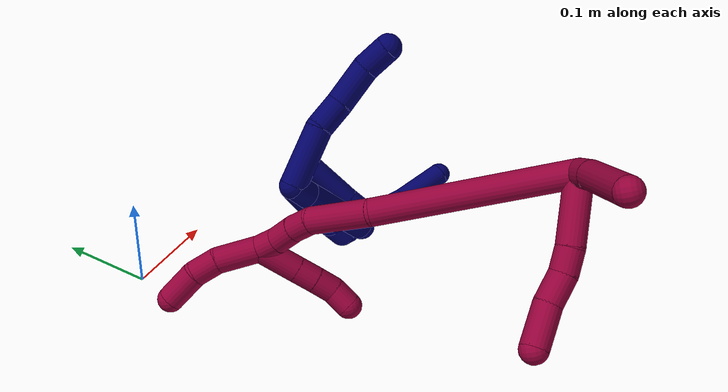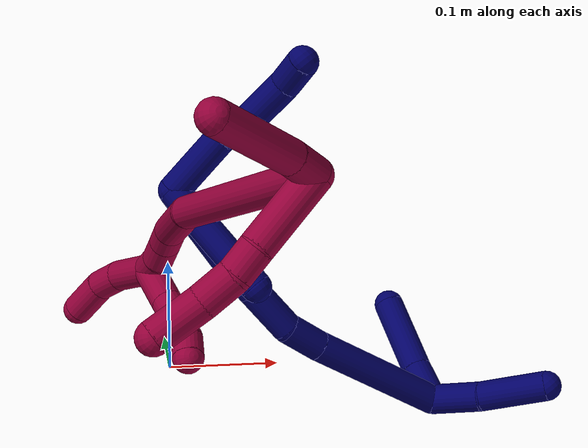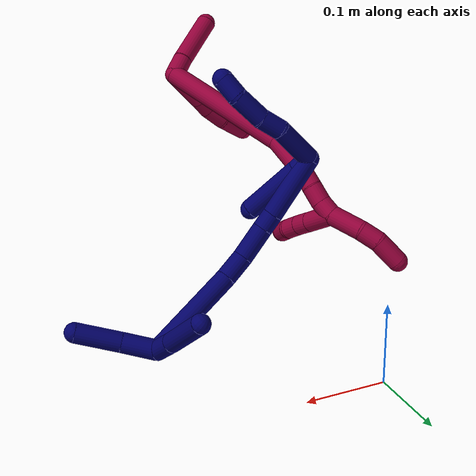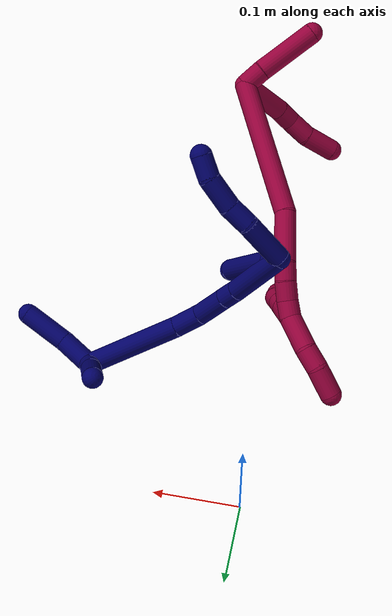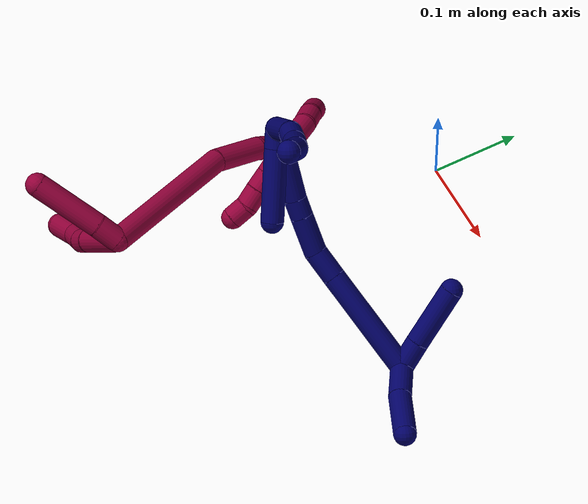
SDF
<sdf version="1.7">
 <world name="default">
  <model name="7">
   <static>0</static>
   <link name="7">
    <collision name="collision-cylinder-e_1_2_8">
     <pose>0.014123 0.023784 -0.004364 -1.75226 0.528618 -0.62813</pose>
     <geometry><cylinder><radius>0.0125</radius><length>0.056008</length></cylinder></geometry>
     <surface>
      <friction><ode><mu>1.16</mu><mu2>1.16</mu2><slip1>0</slip1><slip2>0</slip2></ode></friction>
      <contact><ode><kp>1e+06</kp><kd>1</kd><max_vel>0</max_vel><min_depth>0.001</min_depth></ode></contact>
     </surface>
    </collision>
    <visual name="visual-cylinder-e_1_2_8">
     <pose>0.014123 0.023784 -0.004364 -1.75226 0.528618 -0.62813</pose>
     <geometry><cylinder><radius>0.0125</radius><length>0.056008</length></cylinder></geometry>
     <material><ambient>0.003922 0 0.403922 1</ambient></material>
    </visual>
    <collision name="collision-cylinder-e_2_8_9">
     <pose>0.03375 0.060539 -0.007211 -1.4544 0.398864 -0.355923</pose>
     <geometry><cylinder><radius>0.0125</radius><length>0.028341</length></cylinder></geometry>
     <surface>
      <friction><ode><mu>1.16</mu><mu2>1.16</mu2><slip1>0</slip1><slip2>0</slip2></ode></friction>
      <contact><ode><kp>1e+06</kp><kd>1</kd><max_vel>0</max_vel><min_depth>0.001</min_depth></ode></contact>
     </surface>
    </collision>
    <visual name="visual-cylinder-e_2_8_9">
     <pose>0.03375 0.060539 -0.007211 -1.4544 0.398864 -0.355923</pose>
     <geometry><cylinder><radius>0.0125</radius><length>0.028341</length></cylinder></geometry>
     <material><ambient>0.003922 0 0.403922 1</ambient></material>
    </visual>
    <collision name="collision-cylinder-e_3_9_10">
     <pose>0.045319 0.09189 -0.007222 -1.65367 0.317666 -0.344629</pose>
     <geometry><cylinder><radius>0.0125</radius><length>0.038833</length></cylinder></geometry>
     <surface>
      <friction><ode><mu>1.16</mu><mu2>1.16</mu2><slip1>0</slip1><slip2>0</slip2></ode></friction>
      <contact><ode><kp>1e+06</kp><kd>1</kd><max_vel>0</max_vel><min_depth>0.001</min_depth></ode></contact>
     </surface>
    </collision>
    <visual name="visual-cylinder-e_3_9_10">
     <pose>0.045319 0.09189 -0.007222 -1.65367 0.317666 -0.344629</pose>
     <geometry><cylinder><radius>0.0125</radius><length>0.038833</length></cylinder></geometry>
     <material><ambient>0.003922 0 0.403922 1</ambient></material>
    </visual>
    <collision name="collision-cylinder-e_4_10_6">
     <pose>0.051223 0.123556 -0.010569 -1.70693 -0.011927 0.013673</pose>
     <geometry><cylinder><radius>0.0125</radius><length>0.026818</length></cylinder></geometry>
     <surface>
      <friction><ode><mu>1.16</mu><mu2>1.16</mu2><slip1>0</slip1><slip2>0</slip2></ode></friction>
      <contact><ode><kp>1e+06</kp><kd>1</kd><max_vel>0</max_vel><min_depth>0.001</min_depth></ode></contact>
     </surface>
    </collision>
    <visual name="visual-cylinder-e_4_10_6">
     <pose>0.051223 0.123556 -0.010569 -1.70693 -0.011927 0.013673</pose>
     <geometry><cylinder><radius>0.0125</radius><length>0.026818</length></cylinder></geometry>
     <material><ambient>0.003922 0 0.403922 1</ambient></material>
    </visual>
    <collision name="collision-cylinder-e_1_2_11">
     <pose>-0.00095 0.001131 0.010342 -0.108957 -0.091059 0.004969</pose>
     <geometry><cylinder><radius>0.0125</radius><length>0.020895</length></cylinder></geometry>
     <surface>
      <friction><ode><mu>1.16</mu><mu2>1.16</mu2><slip1>0</slip1><slip2>0</slip2></ode></friction>
      <contact><ode><kp>1e+06</kp><kd>1</kd><max_vel>0</max_vel><min_depth>0.001</min_depth></ode></contact>
     </surface>
    </collision>
    <visual name="visual-cylinder-e_1_2_11">
     <pose>-0.00095 0.001131 0.010342 -0.108957 -0.091059 0.004969</pose>
     <geometry><cylinder><radius>0.0125</radius><length>0.020895</length></cylinder></geometry>
     <material><ambient>0.003922 0 0.403922 1</ambient></material>
    </visual>
    <collision name="collision-cylinder-e_2_11_5">
     <pose>-0.005194 0.00711 0.059801 -0.123294 -0.083373 0.005149</pose>
     <geometry><cylinder><radius>0.0125</radius><length>0.079105</length></cylinder></geometry>
     <surface>
      <friction><ode><mu>1.16</mu><mu2>1.16</mu2><slip1>0</slip1><slip2>0</slip2></ode></friction>
      <contact><ode><kp>1e+06</kp><kd>1</kd><max_vel>0</max_vel><min_depth>0.001</min_depth></ode></contact>
     </surface>
    </collision>
    <visual name="visual-cylinder-e_2_11_5">
     <pose>-0.005194 0.00711 0.059801 -0.123294 -0.083373 0.005149</pose>
     <geometry><cylinder><radius>0.0125</radius><length>0.079105</length></cylinder></geometry>
     <material><ambient>0.003922 0 0.403922 1</ambient></material>
    </visual>
    <collision name="collision-cylinder-e_1_2_12">
     <pose>0.005564 -0.006264 0.039701 0.156493 0.13756 0.010803</pose>
     <geometry><cylinder><radius>0.0125</radius><length>0.08115</length></cylinder></geometry>
     <surface>
      <friction><ode><mu>1.16</mu><mu2>1.16</mu2><slip1>0</slip1><slip2>0</slip2></ode></friction>
      <contact><ode><kp>1e+06</kp><kd>1</kd><max_vel>0</max_vel><min_depth>0.001</min_depth></ode></contact>
     </surface>
    </collision>
    <visual name="visual-cylinder-e_1_2_12">
     <pose>0.005564 -0.006264 0.039701 0.156493 0.13756 0.010803</pose>
     <geometry><cylinder><radius>0.0125</radius><length>0.08115</length></cylinder></geometry>
     <material><ambient>0.003922 0 0.403922 1</ambient></material>
    </visual>
    <collision name="collision-cylinder-e_2_12_13">
     <pose>0.013753 -0.013812 0.089577 0.125538 0.250607 0.015834</pose>
     <geometry><cylinder><radius>0.0125</radius><length>0.021175</length></cylinder></geometry>
     <surface>
      <friction><ode><mu>1.16</mu><mu2>1.16</mu2><slip1>0</slip1><slip2>0</slip2></ode></friction>
      <contact><ode><kp>1e+06</kp><kd>1</kd><max_vel>0</max_vel><min_depth>0.001</min_depth></ode></contact>
     </surface>
    </collision>
    <visual name="visual-cylinder-e_2_12_13">
     <pose>0.013753 -0.013812 0.089577 0.125538 0.250607 0.015834</pose>
     <geometry><cylinder><radius>0.0125</radius><length>0.021175</length></cylinder></geometry>
     <material><ambient>0.003922 0 0.403922 1</ambient></material>
    </visual>
    <collision name="collision-cylinder-e_3_13_14">
     <pose>0.021858 -0.01791 0.120296 0.13613 0.258325 0.017708</pose>
     <geometry><cylinder><radius>0.0125</radius><length>0.042891</length></cylinder></geometry>
     <surface>
      <friction><ode><mu>1.16</mu><mu2>1.16</mu2><slip1>0</slip1><slip2>0</slip2></ode></friction>
      <contact><ode><kp>1e+06</kp><kd>1</kd><max_vel>0</max_vel><min_depth>0.001</min_depth></ode></contact>
     </surface>
    </collision>
    <visual name="visual-cylinder-e_3_13_14">
     <pose>0.021858 -0.01791 0.120296 0.13613 0.258325 0.017708</pose>
     <geometry><cylinder><radius>0.0125</radius><length>0.042891</length></cylinder></geometry>
     <material><ambient>0.003922 0 0.403922 1</ambient></material>
    </visual>
    <collision name="collision-cylinder-e_4_14_15">
     <pose>0.036436 -0.021527 0.154793 0.057451 0.577095 0.017058</pose>
     <geometry><cylinder><radius>0.0125</radius><length>0.033359</length></cylinder></geometry>
     <surface>
      <friction><ode><mu>1.16</mu><mu2>1.16</mu2><slip1>0</slip1><slip2>0</slip2></ode></friction>
      <contact><ode><kp>1e+06</kp><kd>1</kd><max_vel>0</max_vel><min_depth>0.001</min_depth></ode></contact>
     </surface>
    </collision>
    <visual name="visual-cylinder-e_4_14_15">
     <pose>0.036436 -0.021527 0.154793 0.057451 0.577095 0.017058</pose>
     <geometry><cylinder><radius>0.0125</radius><length>0.033359</length></cylinder></geometry>
     <material><ambient>0.003922 0 0.403922 1</ambient></material>
    </visual>
    <collision name="collision-cylinder-e_5_15_1">
     <pose>0.080423 -0.02119 0.218424 -0.022929 0.612133 -0.007246</pose>
     <geometry><cylinder><radius>0.0125</radius><length>0.121425</length></cylinder></geometry>
     <surface>
      <friction><ode><mu>1.16</mu><mu2>1.16</mu2><slip1>0</slip1><slip2>0</slip2></ode></friction>
      <contact><ode><kp>1e+06</kp><kd>1</kd><max_vel>0</max_vel><min_depth>0.001</min_depth></ode></contact>
     </surface>
    </collision>
    <visual name="visual-cylinder-e_5_15_1">
     <pose>0.080423 -0.02119 0.218424 -0.022929 0.612133 -0.007246</pose>
     <geometry><cylinder><radius>0.0125</radius><length>0.121425</length></cylinder></geometry>
     <material><ambient>0.003922 0 0.403922 1</ambient></material>
    </visual>
    <collision name="collision-cylinder-e_1_1_16">
     <pose>0.118261 -0.001239 0.278529 -1.06456 0.136378 -0.080406</pose>
     <geometry><cylinder><radius>0.0125</radius><length>0.043423</length></cylinder></geometry>
     <surface>
      <friction><ode><mu>1.16</mu><mu2>1.16</mu2><slip1>0</slip1><slip2>0</slip2></ode></friction>
      <contact><ode><kp>1e+06</kp><kd>1</kd><max_vel>0</max_vel><min_depth>0.001</min_depth></ode></contact>
     </surface>
    </collision>
    <visual name="visual-cylinder-e_1_1_16">
     <pose>0.118261 -0.001239 0.278529 -1.06456 0.136378 -0.080406</pose>
     <geometry><cylinder><radius>0.0125</radius><length>0.043423</length></cylinder></geometry>
     <material><ambient>0.003922 0 0.403922 1</ambient></material>
    </visual>
    <collision name="collision-cylinder-e_2_16_4">
     <pose>0.129181 0.04181 0.301178 -1.10381 0.285545 -0.176563</pose>
     <geometry><cylinder><radius>0.0125</radius><length>0.056577</length></cylinder></geometry>
     <surface>
      <friction><ode><mu>1.16</mu><mu2>1.16</mu2><slip1>0</slip1><slip2>0</slip2></ode></friction>
      <contact><ode><kp>1e+06</kp><kd>1</kd><max_vel>0</max_vel><min_depth>0.001</min_depth></ode></contact>
     </surface>
    </collision>
    <visual name="visual-cylinder-e_2_16_4">
     <pose>0.129181 0.04181 0.301178 -1.10381 0.285545 -0.176563</pose>
     <geometry><cylinder><radius>0.0125</radius><length>0.056577</length></cylinder></geometry>
     <material><ambient>0.003922 0 0.403922 1</ambient></material>
    </visual>
    <collision name="collision-cylinder-e_1_1_17">
     <pose>0.124026 -0.023107 0.25473 2.91689 0.566221 2.40167</pose>
     <geometry><cylinder><radius>0.0125</radius><length>0.0325</length></cylinder></geometry>
     <surface>
      <friction><ode><mu>1.16</mu><mu2>1.16</mu2><slip1>0</slip1><slip2>0</slip2></ode></friction>
      <contact><ode><kp>1e+06</kp><kd>1</kd><max_vel>0</max_vel><min_depth>0.001</min_depth></ode></contact>
     </surface>
    </collision>
    <visual name="visual-cylinder-e_1_1_17">
     <pose>0.124026 -0.023107 0.25473 2.91689 0.566221 2.40167</pose>
     <geometry><cylinder><radius>0.0125</radius><length>0.0325</length></cylinder></geometry>
     <material><ambient>0.003922 0 0.403922 1</ambient></material>
    </visual>
    <collision name="collision-cylinder-e_2_17_3">
     <pose>0.151579 -0.030949 0.213768 2.96983 0.592109 2.59139</pose>
     <geometry><cylinder><radius>0.0125</radius><length>0.0675</length></cylinder></geometry>
     <surface>
      <friction><ode><mu>1.16</mu><mu2>1.16</mu2><slip1>0</slip1><slip2>0</slip2></ode></friction>
      <contact><ode><kp>1e+06</kp><kd>1</kd><max_vel>0</max_vel><min_depth>0.001</min_depth></ode></contact>
     </surface>
    </collision>
    <visual name="visual-cylinder-e_2_17_3">
     <pose>0.151579 -0.030949 0.213768 2.96983 0.592109 2.59139</pose>
     <geometry><cylinder><radius>0.0125</radius><length>0.0675</length></cylinder></geometry>
     <material><ambient>0.003922 0 0.403922 1</ambient></material>
    </visual>
    <collision name="collision-sphere-3">
     <pose>0.170416 -0.035736 0.186176 0 -0 0</pose>
     <geometry><sphere><radius>0.0125</radius></sphere></geometry>
     <surface>
      <friction><ode><mu>1.16</mu><mu2>1.16</mu2><slip1>0</slip1><slip2>0</slip2></ode></friction>
      <contact><ode><kp>1e+06</kp><kd>1</kd><max_vel>0</max_vel><min_depth>0.001</min_depth></ode></contact>
     </surface>
    </collision>
    <visual name="visual-sphere-3">
     <pose>0.170416 -0.035736 0.186176 0 -0 0</pose>
     <geometry><sphere><radius>0.0125</radius></sphere></geometry>
     <material><ambient>0.003922 0 0.403922 1</ambient></material>
    </visual>
    <collision name="collision-sphere-17">
     <pose>0.132743 -0.026162 0.241361 0 -0 0</pose>
     <geometry><sphere><radius>0.0125</radius></sphere></geometry>
     <surface>
      <friction><ode><mu>1.16</mu><mu2>1.16</mu2><slip1>0</slip1><slip2>0</slip2></ode></friction>
      <contact><ode><kp>1e+06</kp><kd>1</kd><max_vel>0</max_vel><min_depth>0.001</min_depth></ode></contact>
     </surface>
    </collision>
    <visual name="visual-sphere-17">
     <pose>0.132743 -0.026162 0.241361 0 -0 0</pose>
     <geometry><sphere><radius>0.0125</radius></sphere></geometry>
     <material><ambient>0.003922 0 0.403922 1</ambient></material>
    </visual>
    <collision name="collision-sphere-4">
     <pose>0.137149 0.066047 0.313398 0 -0 0</pose>
     <geometry><sphere><radius>0.0125</radius></sphere></geometry>
     <surface>
      <friction><ode><mu>1.16</mu><mu2>1.16</mu2><slip1>0</slip1><slip2>0</slip2></ode></friction>
      <contact><ode><kp>1e+06</kp><kd>1</kd><max_vel>0</max_vel><min_depth>0.001</min_depth></ode></contact>
     </surface>
    </collision>
    <visual name="visual-sphere-4">
     <pose>0.137149 0.066047 0.313398 0 -0 0</pose>
     <geometry><sphere><radius>0.0125</radius></sphere></geometry>
     <material><ambient>0.003922 0 0.403922 1</ambient></material>
    </visual>
    <collision name="collision-sphere-16">
     <pose>0.121212 0.017573 0.288958 0 -0 0</pose>
     <geometry><sphere><radius>0.0125</radius></sphere></geometry>
     <surface>
      <friction><ode><mu>1.16</mu><mu2>1.16</mu2><slip1>0</slip1><slip2>0</slip2></ode></friction>
      <contact><ode><kp>1e+06</kp><kd>1</kd><max_vel>0</max_vel><min_depth>0.001</min_depth></ode></contact>
     </surface>
    </collision>
    <visual name="visual-sphere-16">
     <pose>0.121212 0.017573 0.288958 0 -0 0</pose>
     <geometry><sphere><radius>0.0125</radius></sphere></geometry>
     <material><ambient>0.003922 0 0.403922 1</ambient></material>
    </visual>
    <collision name="collision-sphere-1">
     <pose>0.115309 -0.020051 0.268099 0 -0 0</pose>
     <geometry><sphere><radius>0.0125</radius></sphere></geometry>
     <surface>
      <friction><ode><mu>1.16</mu><mu2>1.16</mu2><slip1>0</slip1><slip2>0</slip2></ode></friction>
      <contact><ode><kp>1e+06</kp><kd>1</kd><max_vel>0</max_vel><min_depth>0.001</min_depth></ode></contact>
     </surface>
    </collision>
    <visual name="visual-sphere-1">
     <pose>0.115309 -0.020051 0.268099 0 -0 0</pose>
     <geometry><sphere><radius>0.0125</radius></sphere></geometry>
     <material><ambient>0.003922 0 0.403922 1</ambient></material>
    </visual>
    <collision name="collision-sphere-15">
     <pose>0.045536 -0.022329 0.168748 0 -0 0</pose>
     <geometry><sphere><radius>0.0125</radius></sphere></geometry>
     <surface>
      <friction><ode><mu>1.16</mu><mu2>1.16</mu2><slip1>0</slip1><slip2>0</slip2></ode></friction>
      <contact><ode><kp>1e+06</kp><kd>1</kd><max_vel>0</max_vel><min_depth>0.001</min_depth></ode></contact>
     </surface>
    </collision>
    <visual name="visual-sphere-15">
     <pose>0.045536 -0.022329 0.168748 0 -0 0</pose>
     <geometry><sphere><radius>0.0125</radius></sphere></geometry>
     <material><ambient>0.003922 0 0.403922 1</ambient></material>
    </visual>
    <collision name="collision-sphere-14">
     <pose>0.027336 -0.020724 0.140838 0 -0 0</pose>
     <geometry><sphere><radius>0.0125</radius></sphere></geometry>
     <surface>
      <friction><ode><mu>1.16</mu><mu2>1.16</mu2><slip1>0</slip1><slip2>0</slip2></ode></friction>
      <contact><ode><kp>1e+06</kp><kd>1</kd><max_vel>0</max_vel><min_depth>0.001</min_depth></ode></contact>
     </surface>
    </collision>
    <visual name="visual-sphere-14">
     <pose>0.027336 -0.020724 0.140838 0 -0 0</pose>
     <geometry><sphere><radius>0.0125</radius></sphere></geometry>
     <material><ambient>0.003922 0 0.403922 1</ambient></material>
    </visual>
    <collision name="collision-sphere-13">
     <pose>0.016379 -0.015097 0.099753 0 -0 0</pose>
     <geometry><sphere><radius>0.0125</radius></sphere></geometry>
     <surface>
      <friction><ode><mu>1.16</mu><mu2>1.16</mu2><slip1>0</slip1><slip2>0</slip2></ode></friction>
      <contact><ode><kp>1e+06</kp><kd>1</kd><max_vel>0</max_vel><min_depth>0.001</min_depth></ode></contact>
     </surface>
    </collision>
    <visual name="visual-sphere-13">
     <pose>0.016379 -0.015097 0.099753 0 -0 0</pose>
     <geometry><sphere><radius>0.0125</radius></sphere></geometry>
     <material><ambient>0.003922 0 0.403922 1</ambient></material>
    </visual>
    <collision name="collision-sphere-12">
     <pose>0.011128 -0.012528 0.079401 0 -0 0</pose>
     <geometry><sphere><radius>0.0125</radius></sphere></geometry>
     <surface>
      <friction><ode><mu>1.16</mu><mu2>1.16</mu2><slip1>0</slip1><slip2>0</slip2></ode></friction>
      <contact><ode><kp>1e+06</kp><kd>1</kd><max_vel>0</max_vel><min_depth>0.001</min_depth></ode></contact>
     </surface>
    </collision>
    <visual name="visual-sphere-12">
     <pose>0.011128 -0.012528 0.079401 0 -0 0</pose>
     <geometry><sphere><radius>0.0125</radius></sphere></geometry>
     <material><ambient>0.003922 0 0.403922 1</ambient></material>
    </visual>
    <collision name="collision-sphere-5">
     <pose>-0.008488 0.011957 0.098917 0 -0 0</pose>
     <geometry><sphere><radius>0.0125</radius></sphere></geometry>
     <surface>
      <friction><ode><mu>1.16</mu><mu2>1.16</mu2><slip1>0</slip1><slip2>0</slip2></ode></friction>
      <contact><ode><kp>1e+06</kp><kd>1</kd><max_vel>0</max_vel><min_depth>0.001</min_depth></ode></contact>
     </surface>
    </collision>
    <visual name="visual-sphere-5">
     <pose>-0.008488 0.011957 0.098917 0 -0 0</pose>
     <geometry><sphere><radius>0.0125</radius></sphere></geometry>
     <material><ambient>0.003922 0 0.403922 1</ambient></material>
    </visual>
    <collision name="collision-sphere-8">
     <pose>0.028247 0.047569 -0.008728 0 -0 0</pose>
     <geometry><sphere><radius>0.0125</radius></sphere></geometry>
     <surface>
      <friction><ode><mu>1.16</mu><mu2>1.16</mu2><slip1>0</slip1><slip2>0</slip2></ode></friction>
      <contact><ode><kp>1e+06</kp><kd>1</kd><max_vel>0</max_vel><min_depth>0.001</min_depth></ode></contact>
     </surface>
    </collision>
    <visual name="visual-sphere-8">
     <pose>0.028247 0.047569 -0.008728 0 -0 0</pose>
     <geometry><sphere><radius>0.0125</radius></sphere></geometry>
     <material><ambient>0.003922 0 0.403922 1</ambient></material>
    </visual>
    <collision name="collision-sphere-2">
     <geometry><sphere><radius>0.0125</radius></sphere></geometry>
     <surface>
      <friction><ode><mu>1.16</mu><mu2>1.16</mu2><slip1>0</slip1><slip2>0</slip2></ode></friction>
      <contact><ode><kp>1e+06</kp><kd>1</kd><max_vel>0</max_vel><min_depth>0.001</min_depth></ode></contact>
     </surface>
    </collision>
    <visual name="visual-sphere-2">
     <geometry><sphere><radius>0.0125</radius></sphere></geometry>
     <material><ambient>0.003922 0 0.403922 1</ambient></material>
    </visual>
    <collision name="collision-sphere-9">
     <pose>0.039254 0.073509 -0.005695 0 -0 0</pose>
     <geometry><sphere><radius>0.0125</radius></sphere></geometry>
     <surface>
      <friction><ode><mu>1.16</mu><mu2>1.16</mu2><slip1>0</slip1><slip2>0</slip2></ode></friction>
      <contact><ode><kp>1e+06</kp><kd>1</kd><max_vel>0</max_vel><min_depth>0.001</min_depth></ode></contact>
     </surface>
    </collision>
    <visual name="visual-sphere-9">
     <pose>0.039254 0.073509 -0.005695 0 -0 0</pose>
     <geometry><sphere><radius>0.0125</radius></sphere></geometry>
     <material><ambient>0.003922 0 0.403922 1</ambient></material>
    </visual>
    <collision name="collision-sphere-10">
     <pose>0.051383 0.110272 -0.008749 0 -0 0</pose>
     <geometry><sphere><radius>0.0125</radius></sphere></geometry>
     <surface>
      <friction><ode><mu>1.16</mu><mu2>1.16</mu2><slip1>0</slip1><slip2>0</slip2></ode></friction>
      <contact><ode><kp>1e+06</kp><kd>1</kd><max_vel>0</max_vel><min_depth>0.001</min_depth></ode></contact>
     </surface>
    </collision>
    <visual name="visual-sphere-10">
     <pose>0.051383 0.110272 -0.008749 0 -0 0</pose>
     <geometry><sphere><radius>0.0125</radius></sphere></geometry>
     <material><ambient>0.003922 0 0.403922 1</ambient></material>
    </visual>
    <collision name="collision-sphere-6">
     <pose>0.051064 0.13684 -0.012388 0 -0 0</pose>
     <geometry><sphere><radius>0.0125</radius></sphere></geometry>
     <surface>
      <friction><ode><mu>1.16</mu><mu2>1.16</mu2><slip1>0</slip1><slip2>0</slip2></ode></friction>
      <contact><ode><kp>1e+06</kp><kd>1</kd><max_vel>0</max_vel><min_depth>0.001</min_depth></ode></contact>
     </surface>
    </collision>
    <visual name="visual-sphere-6">
     <pose>0.051064 0.13684 -0.012388 0 -0 0</pose>
     <geometry><sphere><radius>0.0125</radius></sphere></geometry>
     <material><ambient>0.003922 0 0.403922 1</ambient></material>
    </visual>
    <collision name="collision-sphere-11">
     <pose>-0.0019 0.002263 0.020685 0 -0 0</pose>
     <geometry><sphere><radius>0.0125</radius></sphere></geometry>
     <surface>
      <friction><ode><mu>1.16</mu><mu2>1.16</mu2><slip1>0</slip1><slip2>0</slip2></ode></friction>
      <contact><ode><kp>1e+06</kp><kd>1</kd><max_vel>0</max_vel><min_depth>0.001</min_depth></ode></contact>
     </surface>
    </collision>
    <visual name="visual-sphere-11">
     <pose>-0.0019 0.002263 0.020685 0 -0 0</pose>
     <geometry><sphere><radius>0.0125</radius></sphere></geometry>
     <material><ambient>0.003922 0 0.403922 1</ambient></material>
    </visual>
    <inertial>
     <pose>0.058424 0.006836 0.13032 0 -0 0</pose>
     <mass>0.75</mass>
     <inertia>
      <ixx>0.000275</ixx>
      <ixy>0</ixy>
      <ixz>0</ixz>
      <iyy>0.00032</iyy>
      <iyz>0</iyz>
      <izz>-0.00015</izz>
     </inertia>
    </inertial>
   </link>
   <pose>-0.003721 -0.196173 0.204191 2.47236 -0.216765 0.916036</pose>
  </model>
  <model name="8">
   <static>0</static>
   <link name="8">
    <collision name="collision-cylinder-e_1_2_8">
     <pose>0.002126 -0.029324 -0.008492 1.85268 0.069512 0.09247</pose>
     <geometry><cylinder><radius>0.0125</radius><length>0.061206</length></cylinder></geometry>
     <surface>
      <friction><ode><mu>1.16</mu><mu2>1.16</mu2><slip1>0</slip1><slip2>0</slip2></ode></friction>
      <contact><ode><kp>1e+06</kp><kd>1</kd><max_vel>0</max_vel><min_depth>0.001</min_depth></ode></contact>
     </surface>
    </collision>
    <visual name="visual-cylinder-e_1_2_8">
     <pose>0.002126 -0.029324 -0.008492 1.85268 0.069512 0.09247</pose>
     <geometry><cylinder><radius>0.0125</radius><length>0.061206</length></cylinder></geometry>
     <material><ambient>0.584314 0 0.227451 1</ambient></material>
    </visual>
    <collision name="collision-cylinder-e_2_8_9">
     <pose>0.005423 -0.068755 -0.021545 1.99471 0.105301 0.162837</pose>
     <geometry><cylinder><radius>0.0125</radius><length>0.022299</length></cylinder></geometry>
     <surface>
      <friction><ode><mu>1.16</mu><mu2>1.16</mu2><slip1>0</slip1><slip2>0</slip2></ode></friction>
      <contact><ode><kp>1e+06</kp><kd>1</kd><max_vel>0</max_vel><min_depth>0.001</min_depth></ode></contact>
     </surface>
    </collision>
    <visual name="visual-cylinder-e_2_8_9">
     <pose>0.005423 -0.068755 -0.021545 1.99471 0.105301 0.162837</pose>
     <geometry><cylinder><radius>0.0125</radius><length>0.022299</length></cylinder></geometry>
     <material><ambient>0.584314 0 0.227451 1</ambient></material>
    </visual>
    <collision name="collision-cylinder-e_3_9_10">
     <pose>0.005534 -0.09033 -0.033879 2.16643 -0.076438 -0.143966</pose>
     <geometry><cylinder><radius>0.0125</radius><length>0.027789</length></cylinder></geometry>
     <surface>
      <friction><ode><mu>1.16</mu><mu2>1.16</mu2><slip1>0</slip1><slip2>0</slip2></ode></friction>
      <contact><ode><kp>1e+06</kp><kd>1</kd><max_vel>0</max_vel><min_depth>0.001</min_depth></ode></contact>
     </surface>
    </collision>
    <visual name="visual-cylinder-e_3_9_10">
     <pose>0.005534 -0.09033 -0.033879 2.16643 -0.076438 -0.143966</pose>
     <geometry><cylinder><radius>0.0125</radius><length>0.027789</length></cylinder></geometry>
     <material><ambient>0.584314 0 0.227451 1</ambient></material>
    </visual>
    <collision name="collision-cylinder-e_4_10_6">
     <pose>0.001096 -0.119408 -0.04893 1.96276 -0.175401 -0.261472</pose>
     <geometry><cylinder><radius>0.0125</radius><length>0.038706</length></cylinder></geometry>
     <surface>
      <friction><ode><mu>1.16</mu><mu2>1.16</mu2><slip1>0</slip1><slip2>0</slip2></ode></friction>
      <contact><ode><kp>1e+06</kp><kd>1</kd><max_vel>0</max_vel><min_depth>0.001</min_depth></ode></contact>
     </surface>
    </collision>
    <visual name="visual-cylinder-e_4_10_6">
     <pose>0.001096 -0.119408 -0.04893 1.96276 -0.175401 -0.261472</pose>
     <geometry><cylinder><radius>0.0125</radius><length>0.038706</length></cylinder></geometry>
     <material><ambient>0.584314 0 0.227451 1</ambient></material>
    </visual>
    <collision name="collision-cylinder-e_1_2_11">
     <pose>-0.010501 -0.004995 0.006178 0.679859 -0.923112 -0.348248</pose>
     <geometry><cylinder><radius>0.0125</radius><length>0.026336</length></cylinder></geometry>
     <surface>
      <friction><ode><mu>1.16</mu><mu2>1.16</mu2><slip1>0</slip1><slip2>0</slip2></ode></friction>
      <contact><ode><kp>1e+06</kp><kd>1</kd><max_vel>0</max_vel><min_depth>0.001</min_depth></ode></contact>
     </surface>
    </collision>
    <visual name="visual-cylinder-e_1_2_11">
     <pose>-0.010501 -0.004995 0.006178 0.679859 -0.923112 -0.348248</pose>
     <geometry><cylinder><radius>0.0125</radius><length>0.026336</length></cylinder></geometry>
     <material><ambient>0.584314 0 0.227451 1</ambient></material>
    </visual>
    <collision name="collision-cylinder-e_2_11_5">
     <pose>-0.049408 -0.027104 0.028382 0.818259 -0.880752 -0.403108</pose>
     <geometry><cylinder><radius>0.0125</radius><length>0.073664</length></cylinder></geometry>
     <surface>
      <friction><ode><mu>1.16</mu><mu2>1.16</mu2><slip1>0</slip1><slip2>0</slip2></ode></friction>
      <contact><ode><kp>1e+06</kp><kd>1</kd><max_vel>0</max_vel><min_depth>0.001</min_depth></ode></contact>
     </surface>
    </collision>
    <visual name="visual-cylinder-e_2_11_5">
     <pose>-0.049408 -0.027104 0.028382 0.818259 -0.880752 -0.403108</pose>
     <geometry><cylinder><radius>0.0125</radius><length>0.073664</length></cylinder></geometry>
     <material><ambient>0.584314 0 0.227451 1</ambient></material>
    </visual>
    <collision name="collision-cylinder-e_1_2_12">
     <pose>-0.012621 -0.002974 -0.087193 3.10749 -0.143672 -2.67628</pose>
     <geometry><cylinder><radius>0.0125</radius><length>0.176303</length></cylinder></geometry>
     <surface>
      <friction><ode><mu>1.16</mu><mu2>1.16</mu2><slip1>0</slip1><slip2>0</slip2></ode></friction>
      <contact><ode><kp>1e+06</kp><kd>1</kd><max_vel>0</max_vel><min_depth>0.001</min_depth></ode></contact>
     </surface>
    </collision>
    <visual name="visual-cylinder-e_1_2_12">
     <pose>-0.012621 -0.002974 -0.087193 3.10749 -0.143672 -2.67628</pose>
     <geometry><cylinder><radius>0.0125</radius><length>0.176303</length></cylinder></geometry>
     <material><ambient>0.584314 0 0.227451 1</ambient></material>
    </visual>
    <collision name="collision-cylinder-e_2_12_13">
     <pose>-0.021623 -0.003186 -0.20405 -3.04872 0.120893 -1.83197</pose>
     <geometry><cylinder><radius>0.0125</radius><length>0.060025</length></cylinder></geometry>
     <surface>
      <friction><ode><mu>1.16</mu><mu2>1.16</mu2><slip1>0</slip1><slip2>0</slip2></ode></friction>
      <contact><ode><kp>1e+06</kp><kd>1</kd><max_vel>0</max_vel><min_depth>0.001</min_depth></ode></contact>
     </surface>
    </collision>
    <visual name="visual-cylinder-e_2_12_13">
     <pose>-0.021623 -0.003186 -0.20405 -3.04872 0.120893 -1.83197</pose>
     <geometry><cylinder><radius>0.0125</radius><length>0.060025</length></cylinder></geometry>
     <material><ambient>0.584314 0 0.227451 1</ambient></material>
    </visual>
    <collision name="collision-cylinder-e_3_13_14">
     <pose>-0.01504 -0.00171 -0.243636 3.01253 0.288065 2.30333</pose>
     <geometry><cylinder><radius>0.0125</radius><length>0.020867</length></cylinder></geometry>
     <surface>
      <friction><ode><mu>1.16</mu><mu2>1.16</mu2><slip1>0</slip1><slip2>0</slip2></ode></friction>
      <contact><ode><kp>1e+06</kp><kd>1</kd><max_vel>0</max_vel><min_depth>0.001</min_depth></ode></contact>
     </surface>
    </collision>
    <visual name="visual-cylinder-e_3_13_14">
     <pose>-0.01504 -0.00171 -0.243636 3.01253 0.288065 2.30333</pose>
     <geometry><cylinder><radius>0.0125</radius><length>0.020867</length></cylinder></geometry>
     <material><ambient>0.584314 0 0.227451 1</ambient></material>
    </visual>
    <collision name="collision-cylinder-e_4_14_15">
     <pose>-0.008668 -0.005846 -0.263981 2.87491 0.30542 1.70785</pose>
     <geometry><cylinder><radius>0.0125</radius><length>0.022663</length></cylinder></geometry>
     <surface>
      <friction><ode><mu>1.16</mu><mu2>1.16</mu2><slip1>0</slip1><slip2>0</slip2></ode></friction>
      <contact><ode><kp>1e+06</kp><kd>1</kd><max_vel>0</max_vel><min_depth>0.001</min_depth></ode></contact>
     </surface>
    </collision>
    <visual name="visual-cylinder-e_4_14_15">
     <pose>-0.008668 -0.005846 -0.263981 2.87491 0.30542 1.70785</pose>
     <geometry><cylinder><radius>0.0125</radius><length>0.022663</length></cylinder></geometry>
     <material><ambient>0.584314 0 0.227451 1</ambient></material>
    </visual>
    <collision name="collision-cylinder-e_5_15_1">
     <pose>-0.003949 -0.010573 -0.284213 2.95221 0.130662 1.20642</pose>
     <geometry><cylinder><radius>0.0125</radius><length>0.020142</length></cylinder></geometry>
     <surface>
      <friction><ode><mu>1.16</mu><mu2>1.16</mu2><slip1>0</slip1><slip2>0</slip2></ode></friction>
      <contact><ode><kp>1e+06</kp><kd>1</kd><max_vel>0</max_vel><min_depth>0.001</min_depth></ode></contact>
     </surface>
    </collision>
    <visual name="visual-cylinder-e_5_15_1">
     <pose>-0.003949 -0.010573 -0.284213 2.95221 0.130662 1.20642</pose>
     <geometry><cylinder><radius>0.0125</radius><length>0.020142</length></cylinder></geometry>
     <material><ambient>0.584314 0 0.227451 1</ambient></material>
    </visual>
    <collision name="collision-cylinder-e_1_1_16">
     <pose>0.00983 -0.021758 -0.282203 0.667045 0.692079 0.248546</pose>
     <geometry><cylinder><radius>0.0125</radius><length>0.03907</length></cylinder></geometry>
     <surface>
      <friction><ode><mu>1.16</mu><mu2>1.16</mu2><slip1>0</slip1><slip2>0</slip2></ode></friction>
      <contact><ode><kp>1e+06</kp><kd>1</kd><max_vel>0</max_vel><min_depth>0.001</min_depth></ode></contact>
     </surface>
    </collision>
    <visual name="visual-cylinder-e_1_1_16">
     <pose>0.00983 -0.021758 -0.282203 0.667045 0.692079 0.248546</pose>
     <geometry><cylinder><radius>0.0125</radius><length>0.03907</length></cylinder></geometry>
     <material><ambient>0.584314 0 0.227451 1</ambient></material>
    </visual>
    <collision name="collision-cylinder-e_2_16_17">
     <pose>0.02867 -0.035891 -0.264191 0.661995 0.681738 0.242592</pose>
     <geometry><cylinder><radius>0.0125</radius><length>0.02023</length></cylinder></geometry>
     <surface>
      <friction><ode><mu>1.16</mu><mu2>1.16</mu2><slip1>0</slip1><slip2>0</slip2></ode></friction>
      <contact><ode><kp>1e+06</kp><kd>1</kd><max_vel>0</max_vel><min_depth>0.001</min_depth></ode></contact>
     </surface>
    </collision>
    <visual name="visual-cylinder-e_2_16_17">
     <pose>0.02867 -0.035891 -0.264191 0.661995 0.681738 0.242592</pose>
     <geometry><cylinder><radius>0.0125</radius><length>0.02023</length></cylinder></geometry>
     <material><ambient>0.584314 0 0.227451 1</ambient></material>
    </visual>
    <collision name="collision-cylinder-e_3_17_18">
     <pose>0.041799 -0.045626 -0.252041 0.689243 0.719088 0.268223</pose>
     <geometry><cylinder><radius>0.0125</radius><length>0.020511</length></cylinder></geometry>
     <surface>
      <friction><ode><mu>1.16</mu><mu2>1.16</mu2><slip1>0</slip1><slip2>0</slip2></ode></friction>
      <contact><ode><kp>1e+06</kp><kd>1</kd><max_vel>0</max_vel><min_depth>0.001</min_depth></ode></contact>
     </surface>
    </collision>
    <visual name="visual-cylinder-e_3_17_18">
     <pose>0.041799 -0.045626 -0.252041 0.689243 0.719088 0.268223</pose>
     <geometry><cylinder><radius>0.0125</radius><length>0.020511</length></cylinder></geometry>
     <material><ambient>0.584314 0 0.227451 1</ambient></material>
    </visual>
    <collision name="collision-cylinder-e_4_18_4">
     <pose>0.053022 -0.057943 -0.240887 0.958914 0.458498 0.241468</pose>
     <geometry><cylinder><radius>0.0125</radius><length>0.020188</length></cylinder></geometry>
     <surface>
      <friction><ode><mu>1.16</mu><mu2>1.16</mu2><slip1>0</slip1><slip2>0</slip2></ode></friction>
      <contact><ode><kp>1e+06</kp><kd>1</kd><max_vel>0</max_vel><min_depth>0.001</min_depth></ode></contact>
     </surface>
    </collision>
    <visual name="visual-cylinder-e_4_18_4">
     <pose>0.053022 -0.057943 -0.240887 0.958914 0.458498 0.241468</pose>
     <geometry><cylinder><radius>0.0125</radius><length>0.020188</length></cylinder></geometry>
     <material><ambient>0.584314 0 0.227451 1</ambient></material>
    </visual>
    <collision name="collision-cylinder-e_1_1_19">
     <pose>-0.007602 -0.015606 -0.313752 2.98315 -0.243565 -1.99076</pose>
     <geometry><cylinder><radius>0.0125</radius><length>0.041181</length></cylinder></geometry>
     <surface>
      <friction><ode><mu>1.16</mu><mu2>1.16</mu2><slip1>0</slip1><slip2>0</slip2></ode></friction>
      <contact><ode><kp>1e+06</kp><kd>1</kd><max_vel>0</max_vel><min_depth>0.001</min_depth></ode></contact>
     </surface>
    </collision>
    <visual name="visual-cylinder-e_1_1_19">
     <pose>-0.007602 -0.015606 -0.313752 2.98315 -0.243565 -1.99076</pose>
     <geometry><cylinder><radius>0.0125</radius><length>0.041181</length></cylinder></geometry>
     <material><ambient>0.584314 0 0.227451 1</ambient></material>
    </visual>
    <collision name="collision-cylinder-e_2_19_20">
     <pose>-0.014487 -0.023588 -0.3447 2.73504 -0.155881 -0.724354</pose>
     <geometry><cylinder><radius>0.0125</radius><length>0.024722</length></cylinder></geometry>
     <surface>
      <friction><ode><mu>1.16</mu><mu2>1.16</mu2><slip1>0</slip1><slip2>0</slip2></ode></friction>
      <contact><ode><kp>1e+06</kp><kd>1</kd><max_vel>0</max_vel><min_depth>0.001</min_depth></ode></contact>
     </surface>
    </collision>
    <visual name="visual-cylinder-e_2_19_20">
     <pose>-0.014487 -0.023588 -0.3447 2.73504 -0.155881 -0.724354</pose>
     <geometry><cylinder><radius>0.0125</radius><length>0.024722</length></cylinder></geometry>
     <material><ambient>0.584314 0 0.227451 1</ambient></material>
    </visual>
    <collision name="collision-cylinder-e_3_20_3">
     <pose>-0.015087 -0.037792 -0.370094 2.55729 0.07745 0.256234</pose>
     <geometry><cylinder><radius>0.0125</radius><length>0.034097</length></cylinder></geometry>
     <surface>
      <friction><ode><mu>1.16</mu><mu2>1.16</mu2><slip1>0</slip1><slip2>0</slip2></ode></friction>
      <contact><ode><kp>1e+06</kp><kd>1</kd><max_vel>0</max_vel><min_depth>0.001</min_depth></ode></contact>
     </surface>
    </collision>
    <visual name="visual-cylinder-e_3_20_3">
     <pose>-0.015087 -0.037792 -0.370094 2.55729 0.07745 0.256234</pose>
     <geometry><cylinder><radius>0.0125</radius><length>0.034097</length></cylinder></geometry>
     <material><ambient>0.584314 0 0.227451 1</ambient></material>
    </visual>
    <collision name="collision-sphere-3">
     <pose>-0.013768 -0.047168 -0.384271 0 -0 0</pose>
     <geometry><sphere><radius>0.0125</radius></sphere></geometry>
     <surface>
      <friction><ode><mu>1.16</mu><mu2>1.16</mu2><slip1>0</slip1><slip2>0</slip2></ode></friction>
      <contact><ode><kp>1e+06</kp><kd>1</kd><max_vel>0</max_vel><min_depth>0.001</min_depth></ode></contact>
     </surface>
    </collision>
    <visual name="visual-sphere-3">
     <pose>-0.013768 -0.047168 -0.384271 0 -0 0</pose>
     <geometry><sphere><radius>0.0125</radius></sphere></geometry>
     <material><ambient>0.584314 0 0.227451 1</ambient></material>
    </visual>
    <collision name="collision-sphere-20">
     <pose>-0.016406 -0.028417 -0.355916 0 -0 0</pose>
     <geometry><sphere><radius>0.0125</radius></sphere></geometry>
     <surface>
      <friction><ode><mu>1.16</mu><mu2>1.16</mu2><slip1>0</slip1><slip2>0</slip2></ode></friction>
      <contact><ode><kp>1e+06</kp><kd>1</kd><max_vel>0</max_vel><min_depth>0.001</min_depth></ode></contact>
     </surface>
    </collision>
    <visual name="visual-sphere-20">
     <pose>-0.016406 -0.028417 -0.355916 0 -0 0</pose>
     <geometry><sphere><radius>0.0125</radius></sphere></geometry>
     <material><ambient>0.584314 0 0.227451 1</ambient></material>
    </visual>
    <collision name="collision-sphere-19">
     <pose>-0.012568 -0.018759 -0.333484 0 -0 0</pose>
     <geometry><sphere><radius>0.0125</radius></sphere></geometry>
     <surface>
      <friction><ode><mu>1.16</mu><mu2>1.16</mu2><slip1>0</slip1><slip2>0</slip2></ode></friction>
      <contact><ode><kp>1e+06</kp><kd>1</kd><max_vel>0</max_vel><min_depth>0.001</min_depth></ode></contact>
     </surface>
    </collision>
    <visual name="visual-sphere-19">
     <pose>-0.012568 -0.018759 -0.333484 0 -0 0</pose>
     <geometry><sphere><radius>0.0125</radius></sphere></geometry>
     <material><ambient>0.584314 0 0.227451 1</ambient></material>
    </visual>
    <collision name="collision-sphere-11">
     <pose>-0.021003 -0.00999 0.012357 0 -0 0</pose>
     <geometry><sphere><radius>0.0125</radius></sphere></geometry>
     <surface>
      <friction><ode><mu>1.16</mu><mu2>1.16</mu2><slip1>0</slip1><slip2>0</slip2></ode></friction>
      <contact><ode><kp>1e+06</kp><kd>1</kd><max_vel>0</max_vel><min_depth>0.001</min_depth></ode></contact>
     </surface>
    </collision>
    <visual name="visual-sphere-11">
     <pose>-0.021003 -0.00999 0.012357 0 -0 0</pose>
     <geometry><sphere><radius>0.0125</radius></sphere></geometry>
     <material><ambient>0.584314 0 0.227451 1</ambient></material>
    </visual>
    <collision name="collision-sphere-6">
     <pose>-0.002281 -0.137019 -0.05621 0 -0 0</pose>
     <geometry><sphere><radius>0.0125</radius></sphere></geometry>
     <surface>
      <friction><ode><mu>1.16</mu><mu2>1.16</mu2><slip1>0</slip1><slip2>0</slip2></ode></friction>
      <contact><ode><kp>1e+06</kp><kd>1</kd><max_vel>0</max_vel><min_depth>0.001</min_depth></ode></contact>
     </surface>
    </collision>
    <visual name="visual-sphere-6">
     <pose>-0.002281 -0.137019 -0.05621 0 -0 0</pose>
     <geometry><sphere><radius>0.0125</radius></sphere></geometry>
     <material><ambient>0.584314 0 0.227451 1</ambient></material>
    </visual>
    <collision name="collision-sphere-10">
     <pose>0.004473 -0.101798 -0.041651 0 -0 0</pose>
     <geometry><sphere><radius>0.0125</radius></sphere></geometry>
     <surface>
      <friction><ode><mu>1.16</mu><mu2>1.16</mu2><slip1>0</slip1><slip2>0</slip2></ode></friction>
      <contact><ode><kp>1e+06</kp><kd>1</kd><max_vel>0</max_vel><min_depth>0.001</min_depth></ode></contact>
     </surface>
    </collision>
    <visual name="visual-sphere-10">
     <pose>0.004473 -0.101798 -0.041651 0 -0 0</pose>
     <geometry><sphere><radius>0.0125</radius></sphere></geometry>
     <material><ambient>0.584314 0 0.227451 1</ambient></material>
    </visual>
    <collision name="collision-sphere-9">
     <pose>0.006595 -0.078861 -0.026106 0 -0 0</pose>
     <geometry><sphere><radius>0.0125</radius></sphere></geometry>
     <surface>
      <friction><ode><mu>1.16</mu><mu2>1.16</mu2><slip1>0</slip1><slip2>0</slip2></ode></friction>
      <contact><ode><kp>1e+06</kp><kd>1</kd><max_vel>0</max_vel><min_depth>0.001</min_depth></ode></contact>
     </surface>
    </collision>
    <visual name="visual-sphere-9">
     <pose>0.006595 -0.078861 -0.026106 0 -0 0</pose>
     <geometry><sphere><radius>0.0125</radius></sphere></geometry>
     <material><ambient>0.584314 0 0.227451 1</ambient></material>
    </visual>
    <collision name="collision-sphere-2">
     <geometry><sphere><radius>0.0125</radius></sphere></geometry>
     <surface>
      <friction><ode><mu>1.16</mu><mu2>1.16</mu2><slip1>0</slip1><slip2>0</slip2></ode></friction>
      <contact><ode><kp>1e+06</kp><kd>1</kd><max_vel>0</max_vel><min_depth>0.001</min_depth></ode></contact>
     </surface>
    </collision>
    <visual name="visual-sphere-2">
     <geometry><sphere><radius>0.0125</radius></sphere></geometry>
     <material><ambient>0.584314 0 0.227451 1</ambient></material>
    </visual>
    <collision name="collision-sphere-8">
     <pose>0.004251 -0.058649 -0.016985 0 -0 0</pose>
     <geometry><sphere><radius>0.0125</radius></sphere></geometry>
     <surface>
      <friction><ode><mu>1.16</mu><mu2>1.16</mu2><slip1>0</slip1><slip2>0</slip2></ode></friction>
      <contact><ode><kp>1e+06</kp><kd>1</kd><max_vel>0</max_vel><min_depth>0.001</min_depth></ode></contact>
     </surface>
    </collision>
    <visual name="visual-sphere-8">
     <pose>0.004251 -0.058649 -0.016985 0 -0 0</pose>
     <geometry><sphere><radius>0.0125</radius></sphere></geometry>
     <material><ambient>0.584314 0 0.227451 1</ambient></material>
    </visual>
    <collision name="collision-sphere-5">
     <pose>-0.077814 -0.044219 0.044407 0 -0 0</pose>
     <geometry><sphere><radius>0.0125</radius></sphere></geometry>
     <surface>
      <friction><ode><mu>1.16</mu><mu2>1.16</mu2><slip1>0</slip1><slip2>0</slip2></ode></friction>
      <contact><ode><kp>1e+06</kp><kd>1</kd><max_vel>0</max_vel><min_depth>0.001</min_depth></ode></contact>
     </surface>
    </collision>
    <visual name="visual-sphere-5">
     <pose>-0.077814 -0.044219 0.044407 0 -0 0</pose>
     <geometry><sphere><radius>0.0125</radius></sphere></geometry>
     <material><ambient>0.584314 0 0.227451 1</ambient></material>
    </visual>
    <collision name="collision-sphere-12">
     <pose>-0.025243 -0.005949 -0.174385 0 -0 0</pose>
     <geometry><sphere><radius>0.0125</radius></sphere></geometry>
     <surface>
      <friction><ode><mu>1.16</mu><mu2>1.16</mu2><slip1>0</slip1><slip2>0</slip2></ode></friction>
      <contact><ode><kp>1e+06</kp><kd>1</kd><max_vel>0</max_vel><min_depth>0.001</min_depth></ode></contact>
     </surface>
    </collision>
    <visual name="visual-sphere-12">
     <pose>-0.025243 -0.005949 -0.174385 0 -0 0</pose>
     <geometry><sphere><radius>0.0125</radius></sphere></geometry>
     <material><ambient>0.584314 0 0.227451 1</ambient></material>
    </visual>
    <collision name="collision-sphere-13">
     <pose>-0.018004 -0.000423 -0.233715 0 -0 0</pose>
     <geometry><sphere><radius>0.0125</radius></sphere></geometry>
     <surface>
      <friction><ode><mu>1.16</mu><mu2>1.16</mu2><slip1>0</slip1><slip2>0</slip2></ode></friction>
      <contact><ode><kp>1e+06</kp><kd>1</kd><max_vel>0</max_vel><min_depth>0.001</min_depth></ode></contact>
     </surface>
    </collision>
    <visual name="visual-sphere-13">
     <pose>-0.018004 -0.000423 -0.233715 0 -0 0</pose>
     <geometry><sphere><radius>0.0125</radius></sphere></geometry>
     <material><ambient>0.584314 0 0.227451 1</ambient></material>
    </visual>
    <collision name="collision-sphere-14">
     <pose>-0.012076 -0.002998 -0.253556 0 -0 0</pose>
     <geometry><sphere><radius>0.0125</radius></sphere></geometry>
     <surface>
      <friction><ode><mu>1.16</mu><mu2>1.16</mu2><slip1>0</slip1><slip2>0</slip2></ode></friction>
      <contact><ode><kp>1e+06</kp><kd>1</kd><max_vel>0</max_vel><min_depth>0.001</min_depth></ode></contact>
     </surface>
    </collision>
    <visual name="visual-sphere-14">
     <pose>-0.012076 -0.002998 -0.253556 0 -0 0</pose>
     <geometry><sphere><radius>0.0125</radius></sphere></geometry>
     <material><ambient>0.584314 0 0.227451 1</ambient></material>
    </visual>
    <collision name="collision-sphere-15">
     <pose>-0.005261 -0.008694 -0.274406 0 -0 0</pose>
     <geometry><sphere><radius>0.0125</radius></sphere></geometry>
     <surface>
      <friction><ode><mu>1.16</mu><mu2>1.16</mu2><slip1>0</slip1><slip2>0</slip2></ode></friction>
      <contact><ode><kp>1e+06</kp><kd>1</kd><max_vel>0</max_vel><min_depth>0.001</min_depth></ode></contact>
     </surface>
    </collision>
    <visual name="visual-sphere-15">
     <pose>-0.005261 -0.008694 -0.274406 0 -0 0</pose>
     <geometry><sphere><radius>0.0125</radius></sphere></geometry>
     <material><ambient>0.584314 0 0.227451 1</ambient></material>
    </visual>
    <collision name="collision-sphere-1">
     <pose>-0.002637 -0.012453 -0.294019 0 -0 0</pose>
     <geometry><sphere><radius>0.0125</radius></sphere></geometry>
     <surface>
      <friction><ode><mu>1.16</mu><mu2>1.16</mu2><slip1>0</slip1><slip2>0</slip2></ode></friction>
      <contact><ode><kp>1e+06</kp><kd>1</kd><max_vel>0</max_vel><min_depth>0.001</min_depth></ode></contact>
     </surface>
    </collision>
    <visual name="visual-sphere-1">
     <pose>-0.002637 -0.012453 -0.294019 0 -0 0</pose>
     <geometry><sphere><radius>0.0125</radius></sphere></geometry>
     <material><ambient>0.584314 0 0.227451 1</ambient></material>
    </visual>
    <collision name="collision-sphere-18">
     <pose>0.048554 -0.050533 -0.246086 0 -0 0</pose>
     <geometry><sphere><radius>0.0125</radius></sphere></geometry>
     <surface>
      <friction><ode><mu>1.16</mu><mu2>1.16</mu2><slip1>0</slip1><slip2>0</slip2></ode></friction>
      <contact><ode><kp>1e+06</kp><kd>1</kd><max_vel>0</max_vel><min_depth>0.001</min_depth></ode></contact>
     </surface>
    </collision>
    <visual name="visual-sphere-18">
     <pose>0.048554 -0.050533 -0.246086 0 -0 0</pose>
     <geometry><sphere><radius>0.0125</radius></sphere></geometry>
     <material><ambient>0.584314 0 0.227451 1</ambient></material>
    </visual>
    <collision name="collision-sphere-16">
     <pose>0.022296 -0.031063 -0.270386 0 -0 0</pose>
     <geometry><sphere><radius>0.0125</radius></sphere></geometry>
     <surface>
      <friction><ode><mu>1.16</mu><mu2>1.16</mu2><slip1>0</slip1><slip2>0</slip2></ode></friction>
      <contact><ode><kp>1e+06</kp><kd>1</kd><max_vel>0</max_vel><min_depth>0.001</min_depth></ode></contact>
     </surface>
    </collision>
    <visual name="visual-sphere-16">
     <pose>0.022296 -0.031063 -0.270386 0 -0 0</pose>
     <geometry><sphere><radius>0.0125</radius></sphere></geometry>
     <material><ambient>0.584314 0 0.227451 1</ambient></material>
    </visual>
    <collision name="collision-sphere-17">
     <pose>0.035043 -0.040719 -0.257996 0 -0 0</pose>
     <geometry><sphere><radius>0.0125</radius></sphere></geometry>
     <surface>
      <friction><ode><mu>1.16</mu><mu2>1.16</mu2><slip1>0</slip1><slip2>0</slip2></ode></friction>
      <contact><ode><kp>1e+06</kp><kd>1</kd><max_vel>0</max_vel><min_depth>0.001</min_depth></ode></contact>
     </surface>
    </collision>
    <visual name="visual-sphere-17">
     <pose>0.035043 -0.040719 -0.257996 0 -0 0</pose>
     <geometry><sphere><radius>0.0125</radius></sphere></geometry>
     <material><ambient>0.584314 0 0.227451 1</ambient></material>
    </visual>
    <collision name="collision-sphere-4">
     <pose>0.05749 -0.065352 -0.235687 0 -0 0</pose>
     <geometry><sphere><radius>0.0125</radius></sphere></geometry>
     <surface>
      <friction><ode><mu>1.16</mu><mu2>1.16</mu2><slip1>0</slip1><slip2>0</slip2></ode></friction>
      <contact><ode><kp>1e+06</kp><kd>1</kd><max_vel>0</max_vel><min_depth>0.001</min_depth></ode></contact>
     </surface>
    </collision>
    <visual name="visual-sphere-4">
     <pose>0.05749 -0.065352 -0.235687 0 -0 0</pose>
     <geometry><sphere><radius>0.0125</radius></sphere></geometry>
     <material><ambient>0.584314 0 0.227451 1</ambient></material>
    </visual>
    <inertial>
     <pose>-0.007834 -0.026508 -0.141944 0 -0 0</pose>
     <mass>0.75</mass>
     <inertia>
      <ixx>-0.000588</ixx>
      <ixy>0</ixy>
      <ixz>0</ixz>
      <iyy>0.000194</iyy>
      <iyz>0</iyz>
      <izz>0.000134</izz>
     </inertia>
    </inertial>
   </link>
   <pose>0.07608 -0.42167 0.255256 0.982931 0.793695 -0.106145</pose>
  </model>
 </world>
</sdf>
